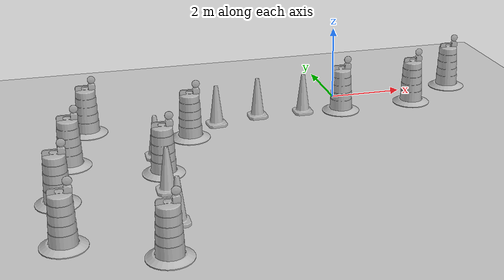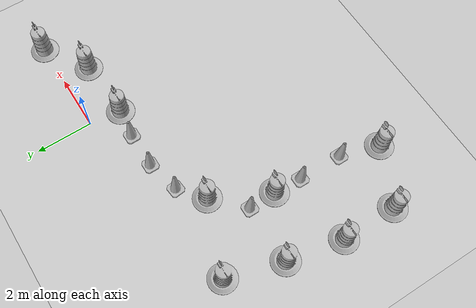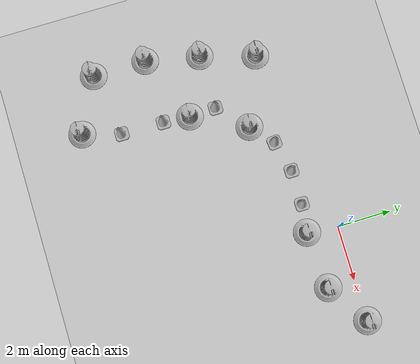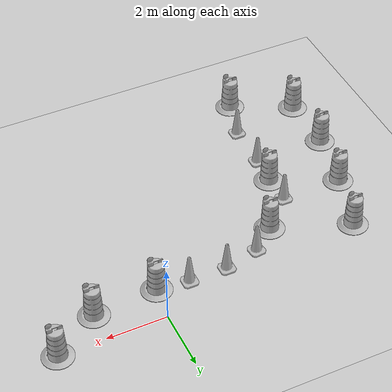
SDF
<sdf version="1.7">
 <world name="default">
  <model name="ground_plane">
   <static>1</static>
   <link name="link">
    <collision name="collision">
     <geometry><plane><normal>0 0 1</normal><size>100 100</size></plane></geometry>
     <surface>
      <contact><collide_bitmask>65535</collide_bitmask></contact>
      <friction><ode><mu>100</mu><mu2>50</mu2></ode></friction>
     </surface>
    </collision>
    <visual name="visual">
     <cast_shadows>0</cast_shadows>
     <geometry><plane><normal>0 0 1</normal><size>100 100</size></plane></geometry>
     <material>
      <script><uri>file://media/materials/scripts/gazebo.material</uri><name>Gazebo/Grey</name></script>
     </material>
    </visual>
   </link>
  </model>
  <model name="Construction Barrel">
   <link name="link">
    <inertial>
     <pose>0 0 0.4 0 -0 0</pose>
     <mass>500</mass>
     <inertia><ixx>51.2096</ixx><iyy>51.2096</iyy><izz>25</izz><ixy>0</ixy><ixz>0</ixz><iyz>0</iyz></inertia>
    </inertial>
    <collision name="collision">
     <geometry><mesh><uri>model://construction_barrel/meshes/construction_barrel.dae</uri></mesh></geometry>
    </collision>
    <visual name="visual">
     <geometry><mesh><uri>model://construction_barrel/meshes/construction_barrel.dae</uri></mesh></geometry>
    </visual>
   </link>
   <pose>-0.130045 -1.13559 -2e-06 7e-06 -2e-06 -3.7e-05</pose>
  </model>
  <model name="Construction Cone">
   <link name="link">
    <collision name="collision">
     <geometry>
      <mesh><scale>10 10 10</scale><uri>model://construction_cone/meshes/construction_cone.dae</uri></mesh>
     </geometry>
    </collision>
    <visual name="visual">
     <geometry>
      <mesh><scale>10 10 10</scale><uri>model://construction_cone/meshes/construction_cone.dae</uri></mesh>
     </geometry>
    </visual>
    <inertial>
     <inertia><ixx>1</ixx><ixy>0</ixy><ixz>0</ixz><iyy>1</iyy><iyz>0</iyz><izz>1</izz></inertia>
     <mass>1</mass>
    </inertial>
   </link>
   <pose>-1.1828 -1.00231 -0 0 -1e-06 0</pose>
  </model>
  <model name="Construction Barrel_clone_clone_2">
   <link name="link">
    <inertial>
     <pose>0 0 0.4 0 -0 0</pose>
     <mass>500</mass>
     <inertia><ixx>51.2096</ixx><iyy>51.2096</iyy><izz>25</izz><ixy>0</ixy><ixz>0</ixz><iyz>0</iyz></inertia>
    </inertial>
    <collision name="collision">
     <geometry><mesh><uri>model://construction_barrel/meshes/construction_barrel.dae</uri></mesh></geometry>
    </collision>
    <visual name="visual">
     <geometry><mesh><uri>model://construction_barrel/meshes/construction_barrel.dae</uri></mesh></geometry>
    </visual>
   </link>
   <pose>-7.00013 -1.00005 -0 0 -0 -4e-05</pose>
  </model>
  <model name="Construction Barrel_clone_clone_3">
   <link name="link">
    <inertial>
     <pose>0 0 0.4 0 -0 0</pose>
     <mass>500</mass>
     <inertia><ixx>51.2096</ixx><iyy>51.2096</iyy><izz>25</izz><ixy>0</ixy><ixz>0</ixz><iyz>0</iyz></inertia>
    </inertial>
    <collision name="collision">
     <geometry><mesh><uri>model://construction_barrel/meshes/construction_barrel.dae</uri></mesh></geometry>
    </collision>
    <visual name="visual">
     <geometry><mesh><uri>model://construction_barrel/meshes/construction_barrel.dae</uri></mesh></geometry>
    </visual>
   </link>
   <pose>-7.5853 -3.00005 -2e-06 1e-06 8e-06 -2.9e-05</pose>
  </model>
  <model name="Construction Barrel_clone_clone_4">
   <link name="link">
    <inertial>
     <pose>0 0 0.4 0 -0 0</pose>
     <mass>500</mass>
     <inertia><ixx>51.2096</ixx><iyy>51.2096</iyy><izz>25</izz><ixy>0</ixy><ixz>0</ixz><iyz>0</iyz></inertia>
    </inertial>
    <collision name="collision">
     <geometry><mesh><uri>model://construction_barrel/meshes/construction_barrel.dae</uri></mesh></geometry>
    </collision>
    <visual name="visual">
     <geometry><mesh><uri>model://construction_barrel/meshes/construction_barrel.dae</uri></mesh></geometry>
    </visual>
   </link>
   <pose>-8.00011 -5.00005 -1e-06 1e-06 -9e-06 -3.2e-05</pose>
  </model>
  <model name="Construction Barrel_clone_clone_5">
   <link name="link">
    <inertial>
     <pose>0 0 0.4 0 -0 0</pose>
     <mass>500</mass>
     <inertia><ixx>51.2096</ixx><iyy>51.2096</iyy><izz>25</izz><ixy>0</ixy><ixz>0</ixz><iyz>0</iyz></inertia>
    </inertial>
    <collision name="collision">
     <geometry><mesh><uri>model://construction_barrel/meshes/construction_barrel.dae</uri></mesh></geometry>
    </collision>
    <visual name="visual">
     <geometry><mesh><uri>model://construction_barrel/meshes/construction_barrel.dae</uri></mesh></geometry>
    </visual>
   </link>
   <pose>-8.00009 -7.00005 -0 0 -0 -3.7e-05</pose>
  </model>
  <model name="Construction Barrel_clone_0">
   <link name="link">
    <inertial>
     <pose>0 0 0.4 0 -0 0</pose>
     <mass>500</mass>
     <inertia><ixx>51.2096</ixx><iyy>51.2096</iyy><izz>25</izz><ixy>0</ixy><ixz>0</ixz><iyz>0</iyz></inertia>
    </inertial>
    <collision name="collision">
     <geometry><mesh><uri>model://construction_barrel/meshes/construction_barrel.dae</uri></mesh></geometry>
    </collision>
    <visual name="visual">
     <geometry><mesh><uri>model://construction_barrel/meshes/construction_barrel.dae</uri></mesh></geometry>
    </visual>
   </link>
   <pose>1.99996 -1.00003 -2e-06 7e-06 -2e-06 -3.7e-05</pose>
  </model>
  <model name="Construction Barrel_clone_1">
   <link name="link">
    <inertial>
     <pose>0 0 0.4 0 -0 0</pose>
     <mass>500</mass>
     <inertia><ixx>51.2096</ixx><iyy>51.2096</iyy><izz>25</izz><ixy>0</ixy><ixz>0</ixz><iyz>0</iyz></inertia>
    </inertial>
    <collision name="collision">
     <geometry><mesh><uri>model://construction_barrel/meshes/construction_barrel.dae</uri></mesh></geometry>
    </collision>
    <visual name="visual">
     <geometry><mesh><uri>model://construction_barrel/meshes/construction_barrel.dae</uri></mesh></geometry>
    </visual>
   </link>
   <pose>3.53103 -3.2e-05 -2e-06 1e-06 8e-06 -3.8e-05</pose>
  </model>
  <model name="Construction Cone_clone_4">
   <link name="link">
    <collision name="collision">
     <geometry>
      <mesh><scale>10 10 10</scale><uri>model://construction_cone/meshes/construction_cone.dae</uri></mesh>
     </geometry>
    </collision>
    <visual name="visual">
     <geometry>
      <mesh><scale>10 10 10</scale><uri>model://construction_cone/meshes/construction_cone.dae</uri></mesh>
     </geometry>
    </visual>
    <inertial>
     <inertia><ixx>1</ixx><ixy>0</ixy><ixz>0</ixz><iyy>1</iyy><iyz>0</iyz><izz>1</izz></inertia>
     <mass>1</mass>
    </inertial>
   </link>
   <pose>-2.46414 -1 -0 0 -0 0</pose>
  </model>
  <model name="Construction Cone_clone_5">
   <link name="link">
    <collision name="collision">
     <geometry>
      <mesh><scale>10 10 10</scale><uri>model://construction_cone/meshes/construction_cone.dae</uri></mesh>
     </geometry>
    </collision>
    <visual name="visual">
     <geometry>
      <mesh><scale>10 10 10</scale><uri>model://construction_cone/meshes/construction_cone.dae</uri></mesh>
     </geometry>
    </visual>
    <inertial>
     <inertia><ixx>1</ixx><ixy>0</ixy><ixz>0</ixz><iyy>1</iyy><iyz>0</iyz><izz>1</izz></inertia>
     <mass>1</mass>
    </inertial>
   </link>
   <pose>-3.65264 -1.28846 -0 -0 -1e-06 0.100705</pose>
  </model>
  <model name="Construction Cone_clone_6">
   <link name="link">
    <collision name="collision">
     <geometry>
      <mesh><scale>10 10 10</scale><uri>model://construction_cone/meshes/construction_cone.dae</uri></mesh>
     </geometry>
    </collision>
    <visual name="visual">
     <geometry>
      <mesh><scale>10 10 10</scale><uri>model://construction_cone/meshes/construction_cone.dae</uri></mesh>
     </geometry>
    </visual>
    <inertial>
     <inertia><ixx>1</ixx><ixy>0</ixy><ixz>0</ixz><iyy>1</iyy><iyz>0</iyz><izz>1</izz></inertia>
     <mass>1</mass>
    </inertial>
   </link>
   <pose>-5.52758 -3 -0 0 -0 0</pose>
  </model>
  <model name="Construction Cone_clone_7">
   <link name="link">
    <collision name="collision">
     <geometry>
      <mesh><scale>10 10 10</scale><uri>model://construction_cone/meshes/construction_cone.dae</uri></mesh>
     </geometry>
    </collision>
    <visual name="visual">
     <geometry>
      <mesh><scale>10 10 10</scale><uri>model://construction_cone/meshes/construction_cone.dae</uri></mesh>
     </geometry>
    </visual>
    <inertial>
     <inertia><ixx>1</ixx><ixy>0</ixy><ixz>0</ixz><iyy>1</iyy><iyz>0</iyz><izz>1</izz></inertia>
     <mass>1</mass>
    </inertial>
   </link>
   <pose>-5.56428 -5 0 -0 -0 -0</pose>
  </model>
  <model name="Construction Cone_clone_8">
   <link name="link">
    <collision name="collision">
     <geometry>
      <mesh><scale>10 10 10</scale><uri>model://construction_cone/meshes/construction_cone.dae</uri></mesh>
     </geometry>
    </collision>
    <visual name="visual">
     <geometry>
      <mesh><scale>10 10 10</scale><uri>model://construction_cone/meshes/construction_cone.dae</uri></mesh>
     </geometry>
    </visual>
    <inertial>
     <inertia><ixx>1</ixx><ixy>0</ixy><ixz>0</ixz><iyy>1</iyy><iyz>0</iyz><izz>1</izz></inertia>
     <mass>1</mass>
    </inertial>
   </link>
   <pose>-5.5912 -6.5929 -0 0 -1e-06 0</pose>
  </model>
  <model name="Construction Barrel_clone_7">
   <link name="link">
    <inertial>
     <pose>0 0 0.4 0 -0 0</pose>
     <mass>500</mass>
     <inertia><ixx>51.2096</ixx><iyy>51.2096</iyy><izz>25</izz><ixy>0</ixy><ixz>0</ixz><iyz>0</iyz></inertia>
    </inertial>
    <collision name="collision">
     <geometry><mesh><uri>model://construction_barrel/meshes/construction_barrel.dae</uri></mesh></geometry>
    </collision>
    <visual name="visual">
     <geometry><mesh><uri>model://construction_barrel/meshes/construction_barrel.dae</uri></mesh></geometry>
    </visual>
   </link>
   <pose>-5.49244 -4.00001 -1e-06 1e-06 -9e-06 -3.6e-05</pose>
  </model>
  <model name="Construction Barrel_clone_8">
   <link name="link">
    <inertial>
     <pose>0 0 0.4 0 -0 0</pose>
     <mass>500</mass>
     <inertia><ixx>51.2096</ixx><iyy>51.2096</iyy><izz>25</izz><ixy>0</ixy><ixz>0</ixz><iyz>0</iyz></inertia>
    </inertial>
    <collision name="collision">
     <geometry><mesh><uri>model://construction_barrel/meshes/construction_barrel.dae</uri></mesh></geometry>
    </collision>
    <visual name="visual">
     <geometry><mesh><uri>model://construction_barrel/meshes/construction_barrel.dae</uri></mesh></geometry>
    </visual>
   </link>
   <pose>-6.00001 -8.00001 -2e-06 1e-06 8e-06 -3.6e-05</pose>
  </model>
  <model name="Construction Barrel_clone_9">
   <link name="link">
    <inertial>
     <pose>0 0 0.4 0 -0 0</pose>
     <mass>500</mass>
     <inertia><ixx>51.2096</ixx><iyy>51.2096</iyy><izz>25</izz><ixy>0</ixy><ixz>0</ixz><iyz>0</iyz></inertia>
    </inertial>
    <collision name="collision">
     <geometry><mesh><uri>model://construction_barrel/meshes/construction_barrel.dae</uri></mesh></geometry>
    </collision>
    <visual name="visual">
     <geometry><mesh><uri>model://construction_barrel/meshes/construction_barrel.dae</uri></mesh></geometry>
    </visual>
   </link>
   <pose>-4.48363 -2.00134 -1e-06 -3e-06 -1e-06 -0.008987</pose>
  </model>
 </world>
</sdf>
